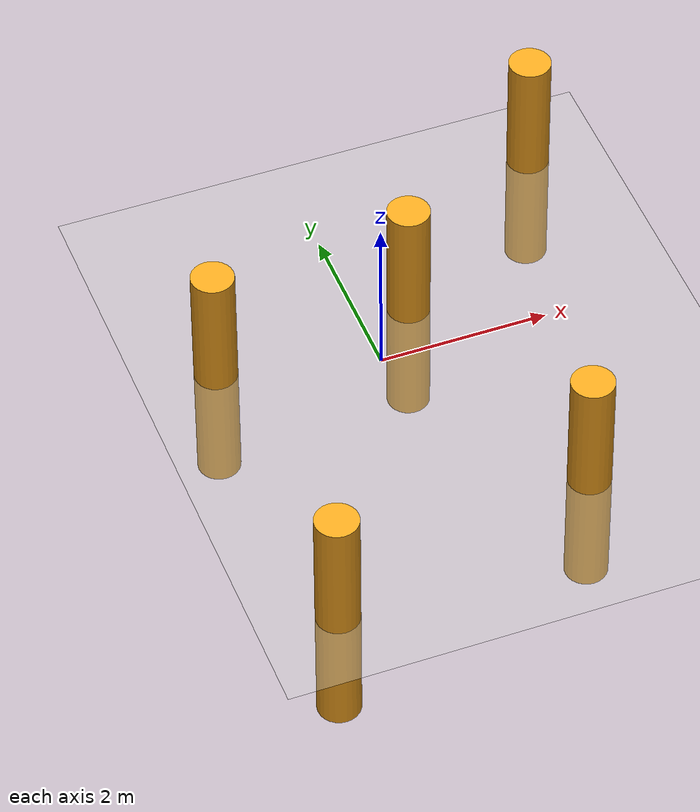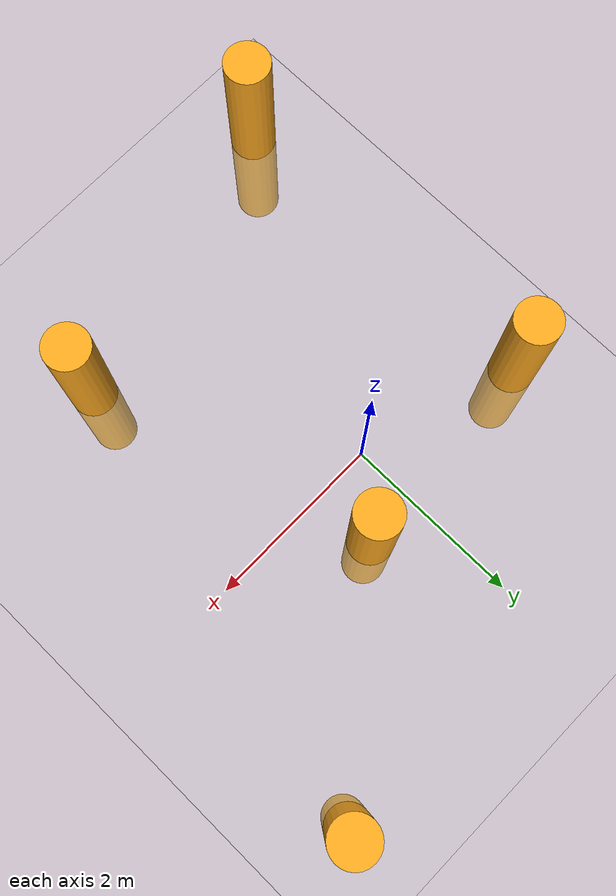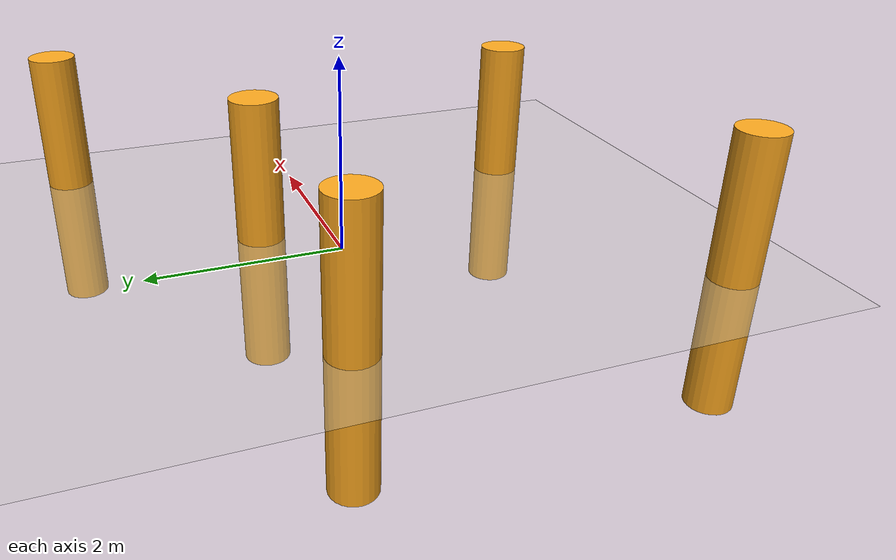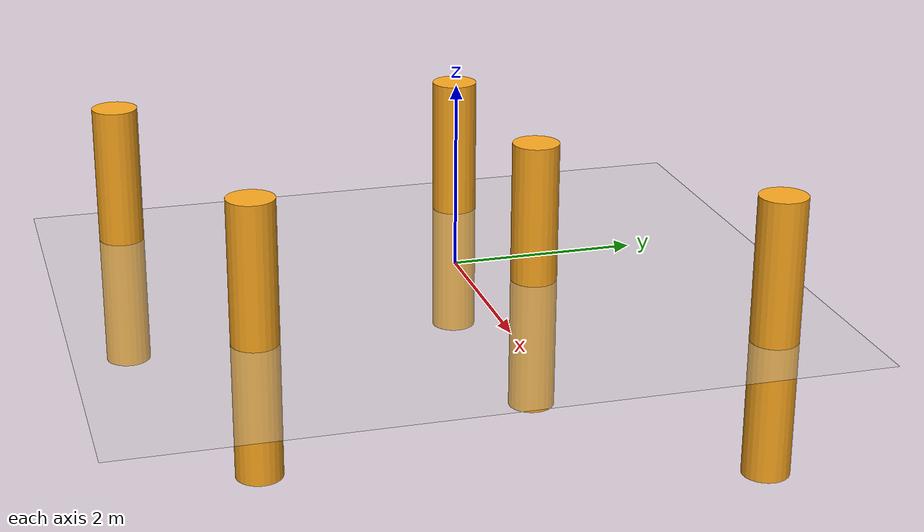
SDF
<sdf version="1.6">
 <world name="cyberzoo">
  <physics type="ode">
   <max_step_size>0.001</max_step_size>
   <real_time_update_rate>0</real_time_update_rate>
  </physics>
  <scene>
   <ambient>0.9 0.9 0.9 1</ambient>
   <background>0.7 0.7 0.7 1</background>
   <origin_visual>false</origin_visual>
   <shadows>false</shadows>
  </scene>
  <spherical_coordinates>
   <surface_model>EARTH_WGS84</surface_model>
   <latitude_deg>51.9906361</latitude_deg>
   <longitude_deg>4.3767874</longitude_deg>
   <elevation>45.110</elevation>
   <heading_deg>180</heading_deg>
  </spherical_coordinates>
  <include><uri>model://ground_plane</uri><pose>0 0 -0.02 0 0 0.454</pose></include>
  <include><uri>model://orange_pole</uri><name>orange_pole1</name><pose>-1.8 -3.4 0 0 0 0</pose></include>
  <include><uri>model://orange_pole</uri><name>orange_pole2</name><pose>-1.8 0.5 0 0 0 0</pose></include>
  <include><uri>model://orange_pole</uri><name>orange_pole3</name><pose>0.6 0.7 0 0 0 0</pose></include>
  <include><uri>model://orange_pole</uri><name>orange_pole4</name><pose>1.5 -2.5 0 0 0 0</pose></include>
  <include><uri>model://orange_pole</uri><name>orange_pole5</name><pose>2.8 2.5 0 0 0 0</pose></include>
 </world>
</sdf>

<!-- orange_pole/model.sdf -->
<sdf version='1.6'>

  <model name='orange_pole'>

    <pose>0 0 1.5 0 0 0</pose>
    <link name='pole'>
      <inertial>
        <mass>1</mass>
        <inertia>
          <ixx>0.145833</ixx>
          <iyy>0.145833</iyy>
          <izz>0.125</izz>
          <ixy>0</ixy>
          <ixz>0</ixz>
          <iyz>0</iyz>
        </inertia>
      </inertial>

      <gravity>0</gravity>
      <self_collide>0</self_collide>
      <kinematic>0</kinematic>
      <enable_wind>true</enable_wind>

      <visual name='pole_visual'>
        <geometry>
          <cylinder>
            <radius>0.25</radius>
            <length>3</length>
          </cylinder>
        </geometry>
        <material>
          <lighting>1</lighting>
          <script>
            <uri>file://media/materials/scripts/gazebo.material</uri>
            <name>Gazebo/Grey</name>
          </script>
          <shader type='vertex'>
            <normal_map>__default__</normal_map>
          </shader>
          <ambient>0.88 0.59 0.11 1</ambient>
          <diffuse>0.99 0.66 0.12 1</diffuse>
          <specular>0.01 0.01 0.01 1</specular>
          <emissive>0 0 0 1</emissive>

        </material>
        <transparency>0</transparency>
        <cast_shadows>1</cast_shadows>
      </visual>

      <collision name='collision'>
        <geometry>
          <cylinder>
            <radius>0.25</radius>
            <length>3</length>
          </cylinder>
        </geometry>
      </collision>
    </link>

    <static>0</static>

    <!-- Dynamic obstacle plugin -->
  </model>
</sdf>
